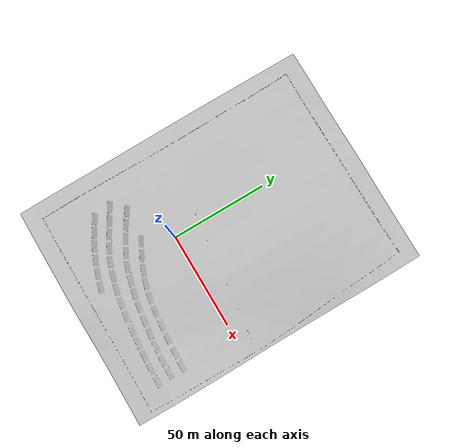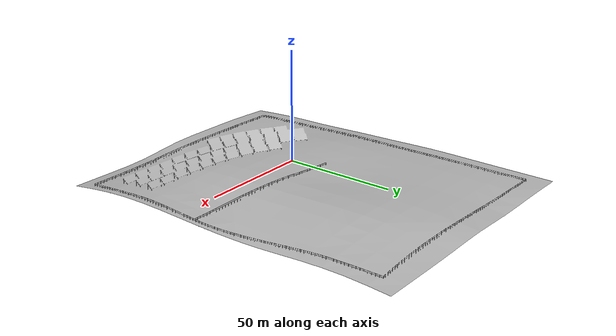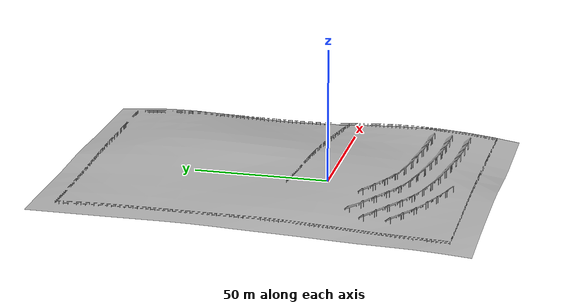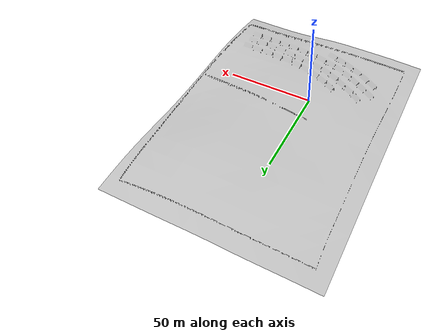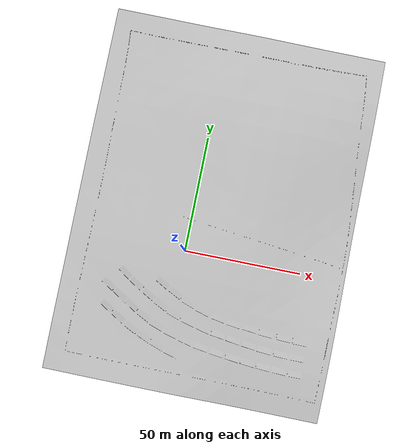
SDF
<?xml version="1.0"?>
<sdf version="1.6">
  <world name="default">
    <grid>false</grid>

    <scene>
      <shadows>false</shadows>
      <grid>false</grid>
      <sky>
        <clouds>
          <speed>4</speed>
        </clouds>
      </sky>
    </scene>

    <include>
      <uri>model://sun</uri>
    </include>

    <include>
	   <pose frame=''>-14 -1.6 0 0 0 0</pose>
      <uri>model://farm1</uri>
    </include>

  </world>
</sdf>

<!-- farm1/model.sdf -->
<sdf version="1.6">
  <model name="farm">
    <static>true</static>
    <link name="link">
      <collision name="colision1">
        <pose>0 0 0 0 0 0 </pose>
          <geometry>
            <box><size>2.32 1 1</size></box>
          </geometry>

      </collision>

      <visual name="visual1">
        <cast_shadows>false</cast_shadows>
	<pose> 0 0 0 0 0 0</pose>
        <geometry>
          <mesh>
            <uri>model://farm1/meshes/agriculture_world.dae</uri>

          </mesh>
        </geometry>
      </visual>

    </link>
  </model>
</sdf>
